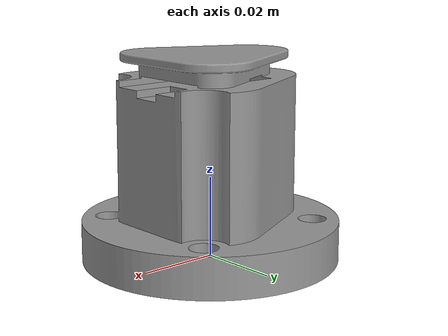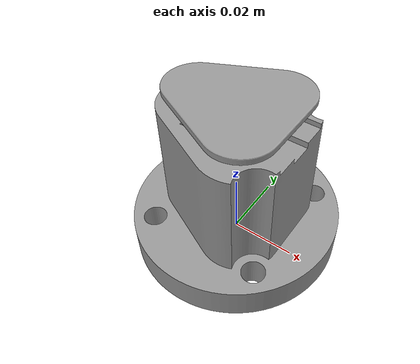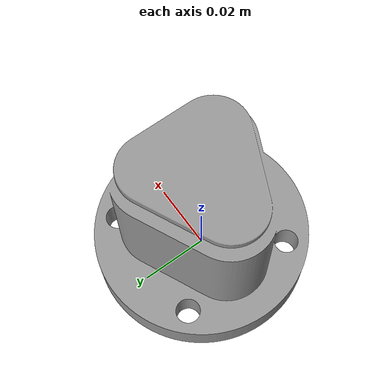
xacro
<?xml version="1.0"?>
<robot xmlns:xacro="http://www.ros.org/wiki/xacro">

  <!-- Sensor link -->
  <link name="sensor_link">
    <visual>
      <geometry>
        <mesh filename="package://sensor_description/meshes/AnySkinToRobot_mesh.stl"/>
      </geometry>
      <material name="Gray">
        <color rgba="0.6 0.6 0.6 1.0"/>
      </material>
    </visual>
    <collision>
      <geometry>
        <mesh filename="package://sensor_description/meshes/AnySkinToRobot_mesh.stl"/>
      </geometry>
    </collision>
    <inertial>
      <mass value="0.090"/>
      <origin xyz="0 0 0" rpy="0 0 0"/>
      <inertia ixx="28343.86861e-9" ixy="-2.25189e-9" ixz="-146.37387e-9"
               iyy="29559.43462e-9" iyz="1.70533e-9"
               izz="24658.37874e-9"/>
    </inertial>
  </link>

  <!-- End-effector frame at the tip of the sensor -->
  <link name="ee_link"/>
  <joint name="sensor_to_ee" type="fixed">
    <parent link="sensor_link"/>
    <child link="ee_link"/>
    <!-- Set xyz to the tip position in sensor_link frame (adjust as needed) -->
    <origin xyz="0 0 0.0505" rpy="0 0 0"/>
  </joint>

</robot>
